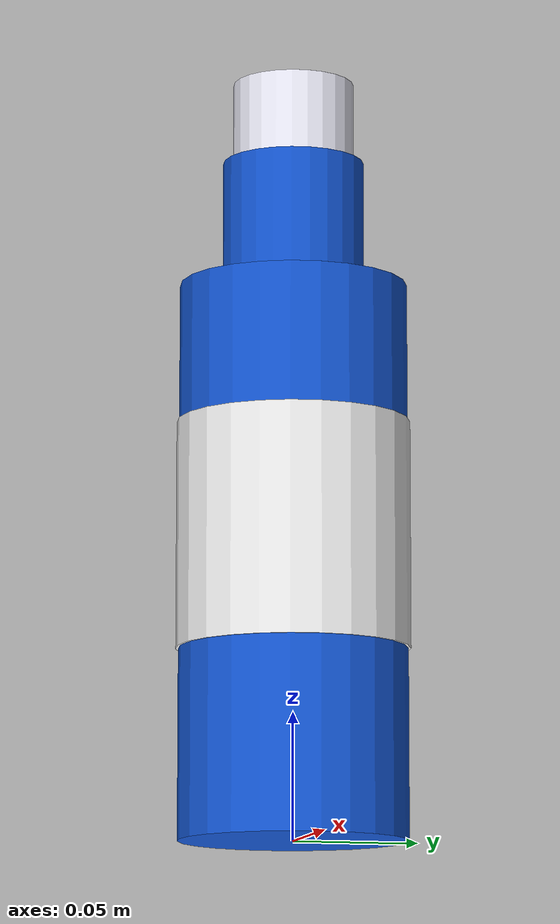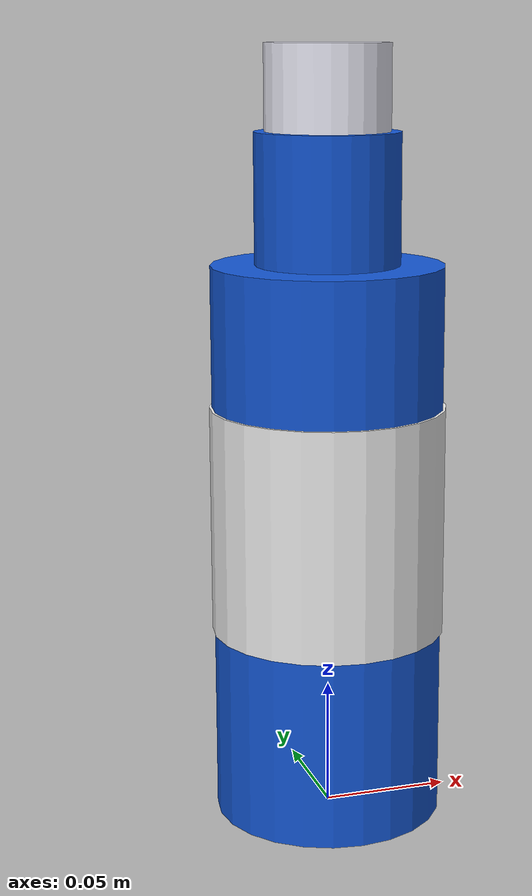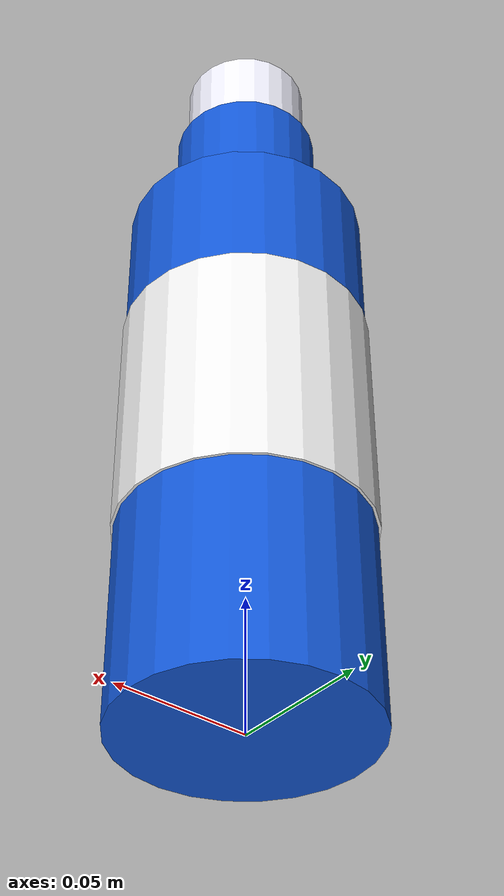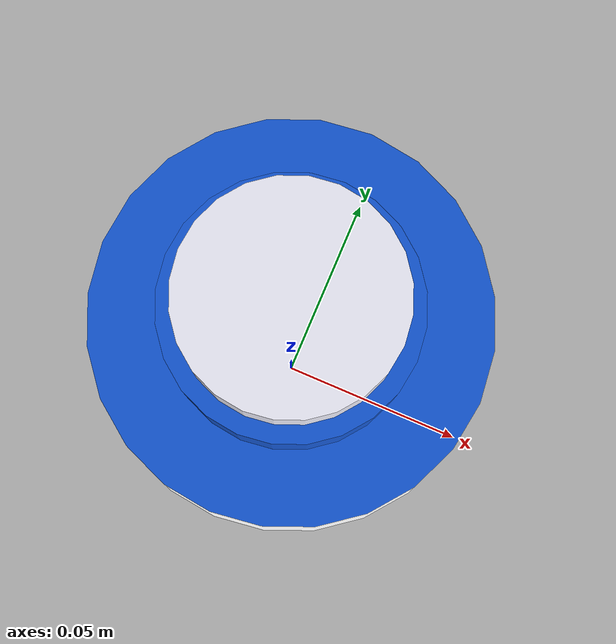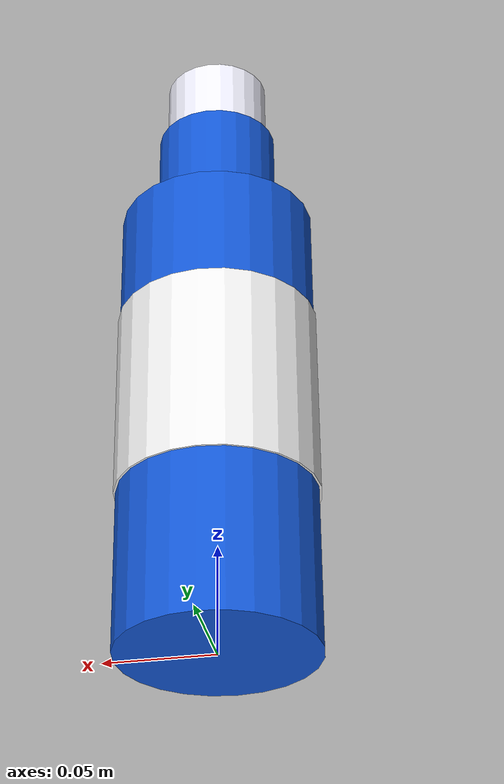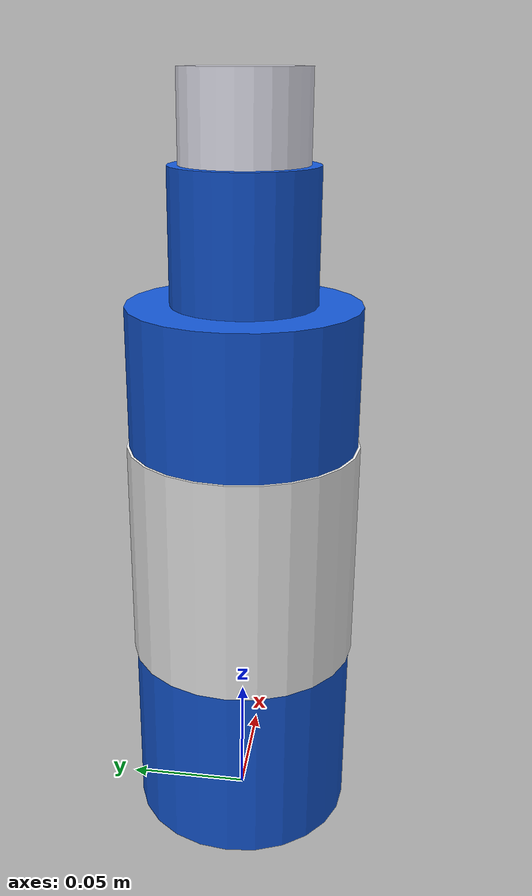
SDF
<?xml version="1.0"?>
<sdf version="1.6">
  <model name="yolo_bottle">
    <static>true</static>
    <link name="link">
      <visual name="body">
        <pose>0 0 0.11 0 0 0</pose>
        <geometry><cylinder><radius>0.045</radius><length>0.22</length></cylinder></geometry>
        <material>
          <ambient>0.05 0.25 0.75 1</ambient>
          <diffuse>0.08 0.35 0.85 1</diffuse>
          <specular>0.5 0.5 0.6 1</specular>
        </material>
      </visual>
      <visual name="shoulder">
        <pose>0 0 0.245 0 0 0</pose>
        <geometry><cylinder><radius>0.028</radius><length>0.05</length></cylinder></geometry>
        <material>
          <ambient>0.05 0.25 0.75 1</ambient>
          <diffuse>0.08 0.35 0.85 1</diffuse>
        </material>
      </visual>
      <visual name="cap">
        <pose>0 0 0.285 0 0 0</pose>
        <geometry><cylinder><radius>0.024</radius><length>0.035</length></cylinder></geometry>
        <material>
          <ambient>0.9 0.9 0.95 1</ambient>
          <diffuse>0.95 0.95 1.0 1</diffuse>
        </material>
      </visual>
      <visual name="label">
        <pose>0 0 0.12 0 0 0</pose>
        <geometry><cylinder><radius>0.046</radius><length>0.09</length></cylinder></geometry>
        <material>
          <ambient>0.9 0.9 0.9 1</ambient>
          <diffuse>0.95 0.95 0.95 1</diffuse>
        </material>
      </visual>
    </link>
  </model>
</sdf>
